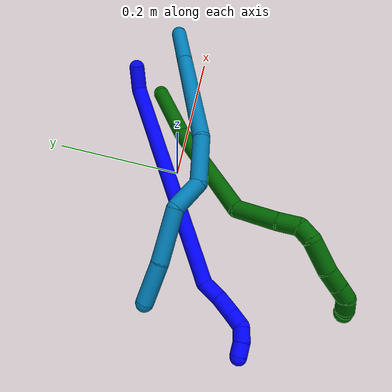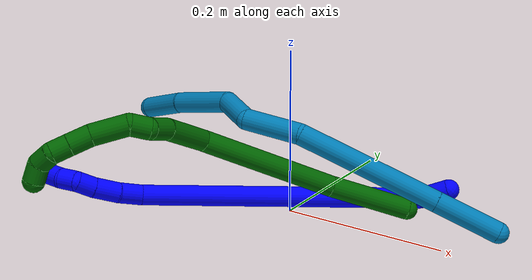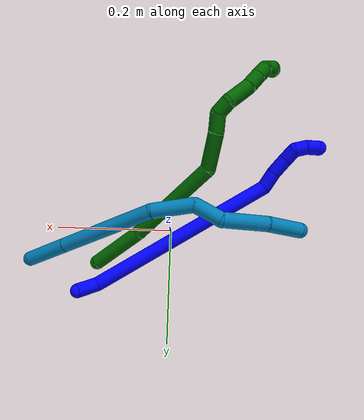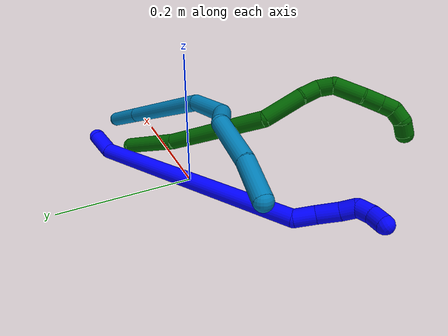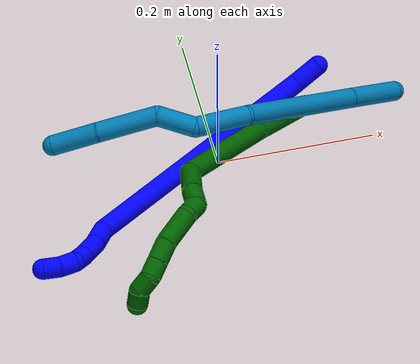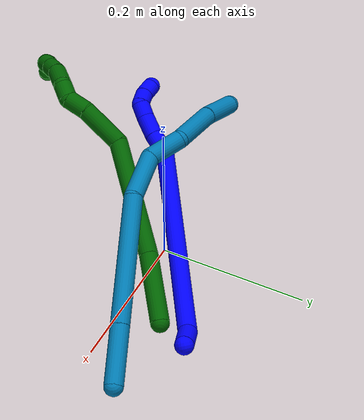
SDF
<sdf version="1.7">
 <world name="default">
  <model name="1">
   <static>0</static>
   <link name="1">
    <collision name="collision-cylinder-e_1_1_4">
     <pose>-0.016079 -0.007122 0.005715 0.894562 -1.05431 -0.544606</pose>
     <geometry><cylinder><radius>0.0125</radius><length>0.036982</length></cylinder></geometry>
     <surface>
      <friction><ode><mu>1.16</mu><mu2>1.16</mu2><slip1>0</slip1><slip2>0</slip2></ode></friction>
      <contact><ode><kp>1e+06</kp><kd>1</kd><max_vel>0</max_vel><min_depth>0.001</min_depth></ode></contact>
     </surface>
    </collision>
    <visual name="visual-cylinder-e_1_1_4">
     <pose>-0.016079 -0.007122 0.005715 0.894562 -1.05431 -0.544606</pose>
     <geometry><cylinder><radius>0.0125</radius><length>0.036982</length></cylinder></geometry>
     <material><ambient>0 0 1 1</ambient></material>
    </visual>
    <collision name="collision-cylinder-e_2_4_5">
     <pose>-0.137773 -0.077545 0.127361 0.499788 -0.674486 -0.17851</pose>
     <geometry><cylinder><radius>0.0125</radius><length>0.338241</length></cylinder></geometry>
     <surface>
      <friction><ode><mu>1.16</mu><mu2>1.16</mu2><slip1>0</slip1><slip2>0</slip2></ode></friction>
      <contact><ode><kp>1e+06</kp><kd>1</kd><max_vel>0</max_vel><min_depth>0.001</min_depth></ode></contact>
     </surface>
    </collision>
    <visual name="visual-cylinder-e_2_4_5">
     <pose>-0.137773 -0.077545 0.127361 0.499788 -0.674486 -0.17851</pose>
     <geometry><cylinder><radius>0.0125</radius><length>0.338241</length></cylinder></geometry>
     <material><ambient>0 0 1 1</ambient></material>
    </visual>
    <collision name="collision-cylinder-e_3_5_6">
     <pose>-0.245435 -0.1488 0.256181 0.552863 -0.134301 -0.038153</pose>
     <geometry><cylinder><radius>0.0125</radius><length>0.030565</length></cylinder></geometry>
     <surface>
      <friction><ode><mu>1.16</mu><mu2>1.16</mu2><slip1>0</slip1><slip2>0</slip2></ode></friction>
      <contact><ode><kp>1e+06</kp><kd>1</kd><max_vel>0</max_vel><min_depth>0.001</min_depth></ode></contact>
     </surface>
    </collision>
    <visual name="visual-cylinder-e_3_5_6">
     <pose>-0.245435 -0.1488 0.256181 0.552863 -0.134301 -0.038153</pose>
     <geometry><cylinder><radius>0.0125</radius><length>0.030565</length></cylinder></geometry>
     <material><ambient>0 0 1 1</ambient></material>
    </visual>
    <collision name="collision-cylinder-e_4_6_7">
     <pose>-0.250662 -0.16298 0.283043 0.419224 -0.20505 -0.043768</pose>
     <geometry><cylinder><radius>0.0125</radius><length>0.03125</length></cylinder></geometry>
     <surface>
      <friction><ode><mu>1.16</mu><mu2>1.16</mu2><slip1>0</slip1><slip2>0</slip2></ode></friction>
      <contact><ode><kp>1e+06</kp><kd>1</kd><max_vel>0</max_vel><min_depth>0.001</min_depth></ode></contact>
     </surface>
    </collision>
    <visual name="visual-cylinder-e_4_6_7">
     <pose>-0.250662 -0.16298 0.283043 0.419224 -0.20505 -0.043768</pose>
     <geometry><cylinder><radius>0.0125</radius><length>0.03125</length></cylinder></geometry>
     <material><ambient>0 0 1 1</ambient></material>
    </visual>
    <collision name="collision-cylinder-e_5_7_8">
     <pose>-0.25556 -0.172384 0.307364 0.297867 -0.157258 -0.023643</pose>
     <geometry><cylinder><radius>0.0125</radius><length>0.02192</length></cylinder></geometry>
     <surface>
      <friction><ode><mu>1.16</mu><mu2>1.16</mu2><slip1>0</slip1><slip2>0</slip2></ode></friction>
      <contact><ode><kp>1e+06</kp><kd>1</kd><max_vel>0</max_vel><min_depth>0.001</min_depth></ode></contact>
     </surface>
    </collision>
    <visual name="visual-cylinder-e_5_7_8">
     <pose>-0.25556 -0.172384 0.307364 0.297867 -0.157258 -0.023643</pose>
     <geometry><cylinder><radius>0.0125</radius><length>0.02192</length></cylinder></geometry>
     <material><ambient>0 0 1 1</ambient></material>
    </visual>
    <collision name="collision-cylinder-e_6_8_9">
     <pose>-0.265128 -0.176367 0.324406 0.119825 -0.861264 -0.055098</pose>
     <geometry><cylinder><radius>0.0125</radius><length>0.020698</length></cylinder></geometry>
     <surface>
      <friction><ode><mu>1.16</mu><mu2>1.16</mu2><slip1>0</slip1><slip2>0</slip2></ode></friction>
      <contact><ode><kp>1e+06</kp><kd>1</kd><max_vel>0</max_vel><min_depth>0.001</min_depth></ode></contact>
     </surface>
    </collision>
    <visual name="visual-cylinder-e_6_8_9">
     <pose>-0.265128 -0.176367 0.324406 0.119825 -0.861264 -0.055098</pose>
     <geometry><cylinder><radius>0.0125</radius><length>0.020698</length></cylinder></geometry>
     <material><ambient>0 0 1 1</ambient></material>
    </visual>
    <collision name="collision-cylinder-e_7_9_2">
     <pose>-0.281598 -0.175687 0.336295 -0.278605 -1.0108 0.154857</pose>
     <geometry><cylinder><radius>0.0125</radius><length>0.020344</length></cylinder></geometry>
     <surface>
      <friction><ode><mu>1.16</mu><mu2>1.16</mu2><slip1>0</slip1><slip2>0</slip2></ode></friction>
      <contact><ode><kp>1e+06</kp><kd>1</kd><max_vel>0</max_vel><min_depth>0.001</min_depth></ode></contact>
     </surface>
    </collision>
    <visual name="visual-cylinder-e_7_9_2">
     <pose>-0.281598 -0.175687 0.336295 -0.278605 -1.0108 0.154857</pose>
     <geometry><cylinder><radius>0.0125</radius><length>0.020344</length></cylinder></geometry>
     <material><ambient>0 0 1 1</ambient></material>
    </visual>
    <collision name="collision-sphere-2">
     <pose>-0.290216 -0.174201 0.341489 0 -0 0</pose>
     <geometry><sphere><radius>0.0125</radius></sphere></geometry>
     <surface>
      <friction><ode><mu>1.16</mu><mu2>1.16</mu2><slip1>0</slip1><slip2>0</slip2></ode></friction>
      <contact><ode><kp>1e+06</kp><kd>1</kd><max_vel>0</max_vel><min_depth>0.001</min_depth></ode></contact>
     </surface>
    </collision>
    <visual name="visual-sphere-2">
     <pose>-0.290216 -0.174201 0.341489 0 -0 0</pose>
     <geometry><sphere><radius>0.0125</radius></sphere></geometry>
     <material><ambient>0 0 1 1</ambient></material>
    </visual>
    <collision name="collision-sphere-9">
     <pose>-0.27298 -0.177173 0.3311 0 -0 0</pose>
     <geometry><sphere><radius>0.0125</radius></sphere></geometry>
     <surface>
      <friction><ode><mu>1.16</mu><mu2>1.16</mu2><slip1>0</slip1><slip2>0</slip2></ode></friction>
      <contact><ode><kp>1e+06</kp><kd>1</kd><max_vel>0</max_vel><min_depth>0.001</min_depth></ode></contact>
     </surface>
    </collision>
    <visual name="visual-sphere-9">
     <pose>-0.27298 -0.177173 0.3311 0 -0 0</pose>
     <geometry><sphere><radius>0.0125</radius></sphere></geometry>
     <material><ambient>0 0 1 1</ambient></material>
    </visual>
    <collision name="collision-sphere-4">
     <pose>-0.032158 -0.014244 0.01143 0 -0 0</pose>
     <geometry><sphere><radius>0.0125</radius></sphere></geometry>
     <surface>
      <friction><ode><mu>1.16</mu><mu2>1.16</mu2><slip1>0</slip1><slip2>0</slip2></ode></friction>
      <contact><ode><kp>1e+06</kp><kd>1</kd><max_vel>0</max_vel><min_depth>0.001</min_depth></ode></contact>
     </surface>
    </collision>
    <visual name="visual-sphere-4">
     <pose>-0.032158 -0.014244 0.01143 0 -0 0</pose>
     <geometry><sphere><radius>0.0125</radius></sphere></geometry>
     <material><ambient>0 0 1 1</ambient></material>
    </visual>
    <collision name="collision-sphere-1">
     <geometry><sphere><radius>0.0125</radius></sphere></geometry>
     <surface>
      <friction><ode><mu>1.16</mu><mu2>1.16</mu2><slip1>0</slip1><slip2>0</slip2></ode></friction>
      <contact><ode><kp>1e+06</kp><kd>1</kd><max_vel>0</max_vel><min_depth>0.001</min_depth></ode></contact>
     </surface>
    </collision>
    <visual name="visual-sphere-1">
     <geometry><sphere><radius>0.0125</radius></sphere></geometry>
     <material><ambient>0 0 1 1</ambient></material>
    </visual>
    <collision name="collision-sphere-8">
     <pose>-0.257277 -0.175561 0.317712 0 -0 0</pose>
     <geometry><sphere><radius>0.0125</radius></sphere></geometry>
     <surface>
      <friction><ode><mu>1.16</mu><mu2>1.16</mu2><slip1>0</slip1><slip2>0</slip2></ode></friction>
      <contact><ode><kp>1e+06</kp><kd>1</kd><max_vel>0</max_vel><min_depth>0.001</min_depth></ode></contact>
     </surface>
    </collision>
    <visual name="visual-sphere-8">
     <pose>-0.257277 -0.175561 0.317712 0 -0 0</pose>
     <geometry><sphere><radius>0.0125</radius></sphere></geometry>
     <material><ambient>0 0 1 1</ambient></material>
    </visual>
    <collision name="collision-sphere-5">
     <pose>-0.243388 -0.140847 0.243293 0 -0 0</pose>
     <geometry><sphere><radius>0.0125</radius></sphere></geometry>
     <surface>
      <friction><ode><mu>1.16</mu><mu2>1.16</mu2><slip1>0</slip1><slip2>0</slip2></ode></friction>
      <contact><ode><kp>1e+06</kp><kd>1</kd><max_vel>0</max_vel><min_depth>0.001</min_depth></ode></contact>
     </surface>
    </collision>
    <visual name="visual-sphere-5">
     <pose>-0.243388 -0.140847 0.243293 0 -0 0</pose>
     <geometry><sphere><radius>0.0125</radius></sphere></geometry>
     <material><ambient>0 0 1 1</ambient></material>
    </visual>
    <collision name="collision-sphere-6">
     <pose>-0.247481 -0.156753 0.26907 0 -0 0</pose>
     <geometry><sphere><radius>0.0125</radius></sphere></geometry>
     <surface>
      <friction><ode><mu>1.16</mu><mu2>1.16</mu2><slip1>0</slip1><slip2>0</slip2></ode></friction>
      <contact><ode><kp>1e+06</kp><kd>1</kd><max_vel>0</max_vel><min_depth>0.001</min_depth></ode></contact>
     </surface>
    </collision>
    <visual name="visual-sphere-6">
     <pose>-0.247481 -0.156753 0.26907 0 -0 0</pose>
     <geometry><sphere><radius>0.0125</radius></sphere></geometry>
     <material><ambient>0 0 1 1</ambient></material>
    </visual>
    <collision name="collision-sphere-7">
     <pose>-0.253844 -0.169207 0.297016 0 -0 0</pose>
     <geometry><sphere><radius>0.0125</radius></sphere></geometry>
     <surface>
      <friction><ode><mu>1.16</mu><mu2>1.16</mu2><slip1>0</slip1><slip2>0</slip2></ode></friction>
      <contact><ode><kp>1e+06</kp><kd>1</kd><max_vel>0</max_vel><min_depth>0.001</min_depth></ode></contact>
     </surface>
    </collision>
    <visual name="visual-sphere-7">
     <pose>-0.253844 -0.169207 0.297016 0 -0 0</pose>
     <geometry><sphere><radius>0.0125</radius></sphere></geometry>
     <material><ambient>0 0 1 1</ambient></material>
    </visual>
    <inertial>
     <pose>-0.158697 -0.094274 0.160518 0 -0 0</pose>
     <mass>0.5</mass>
     <inertia>
      <ixx>0.002028</ixx>
      <ixy>0</ixy>
      <ixz>0</ixz>
      <iyy>0.002521</iyy>
      <iyz>0</iyz>
      <izz>0.003276</izz>
     </inertia>
    </inertial>
   </link>
   <pose>0.156792 0.108735 0.02594 0.625298 -0.494492 -0.223409</pose>
  </model>
  <model name="6">
   <static>0</static>
   <link name="6">
    <collision name="collision-cylinder-e_1_1_4">
     <pose>-0.012853 -0.014627 0.043687 0.323076 -0.272062 -0.044603</pose>
     <geometry><cylinder><radius>0.0125</radius><length>0.095659</length></cylinder></geometry>
     <surface>
      <friction><ode><mu>1.16</mu><mu2>1.16</mu2><slip1>0</slip1><slip2>0</slip2></ode></friction>
      <contact><ode><kp>1e+06</kp><kd>1</kd><max_vel>0</max_vel><min_depth>0.001</min_depth></ode></contact>
     </surface>
    </collision>
    <visual name="visual-cylinder-e_1_1_4">
     <pose>-0.012853 -0.014627 0.043687 0.323076 -0.272062 -0.044603</pose>
     <geometry><cylinder><radius>0.0125</radius><length>0.095659</length></cylinder></geometry>
     <material><ambient>0 0.392157 0.003922 1</ambient></material>
    </visual>
    <collision name="collision-cylinder-e_2_4_5">
     <pose>-0.057287 -0.057235 0.157457 0.379872 -0.396353 -0.077175</pose>
     <geometry><cylinder><radius>0.0125</radius><length>0.163609</length></cylinder></geometry>
     <surface>
      <friction><ode><mu>1.16</mu><mu2>1.16</mu2><slip1>0</slip1><slip2>0</slip2></ode></friction>
      <contact><ode><kp>1e+06</kp><kd>1</kd><max_vel>0</max_vel><min_depth>0.001</min_depth></ode></contact>
     </surface>
    </collision>
    <visual name="visual-cylinder-e_2_4_5">
     <pose>-0.057287 -0.057235 0.157457 0.379872 -0.396353 -0.077175</pose>
     <geometry><cylinder><radius>0.0125</radius><length>0.163609</length></cylinder></geometry>
     <material><ambient>0 0.392157 0.003922 1</ambient></material>
    </visual>
    <collision name="collision-cylinder-e_3_5_6">
     <pose>-0.114132 -0.091275 0.243137 0.370506 -0.98582 -0.200643</pose>
     <geometry><cylinder><radius>0.0125</radius><length>0.060607</length></cylinder></geometry>
     <surface>
      <friction><ode><mu>1.16</mu><mu2>1.16</mu2><slip1>0</slip1><slip2>0</slip2></ode></friction>
      <contact><ode><kp>1e+06</kp><kd>1</kd><max_vel>0</max_vel><min_depth>0.001</min_depth></ode></contact>
     </surface>
    </collision>
    <visual name="visual-cylinder-e_3_5_6">
     <pose>-0.114132 -0.091275 0.243137 0.370506 -0.98582 -0.200643</pose>
     <geometry><cylinder><radius>0.0125</radius><length>0.060607</length></cylinder></geometry>
     <material><ambient>0 0.392157 0.003922 1</ambient></material>
    </visual>
    <collision name="collision-cylinder-e_4_6_7">
     <pose>-0.152051 -0.097261 0.265567 -0.010701 -1.07571 0.006384</pose>
     <geometry><cylinder><radius>0.0125</radius><length>0.028761</length></cylinder></geometry>
     <surface>
      <friction><ode><mu>1.16</mu><mu2>1.16</mu2><slip1>0</slip1><slip2>0</slip2></ode></friction>
      <contact><ode><kp>1e+06</kp><kd>1</kd><max_vel>0</max_vel><min_depth>0.001</min_depth></ode></contact>
     </surface>
    </collision>
    <visual name="visual-cylinder-e_4_6_7">
     <pose>-0.152051 -0.097261 0.265567 -0.010701 -1.07571 0.006384</pose>
     <geometry><cylinder><radius>0.0125</radius><length>0.028761</length></cylinder></geometry>
     <material><ambient>0 0.392157 0.003922 1</ambient></material>
    </visual>
    <collision name="collision-cylinder-e_5_7_8">
     <pose>-0.169682 -0.099617 0.282388 0.238555 -0.450812 -0.054948</pose>
     <geometry><cylinder><radius>0.0125</radius><length>0.022844</length></cylinder></geometry>
     <surface>
      <friction><ode><mu>1.16</mu><mu2>1.16</mu2><slip1>0</slip1><slip2>0</slip2></ode></friction>
      <contact><ode><kp>1e+06</kp><kd>1</kd><max_vel>0</max_vel><min_depth>0.001</min_depth></ode></contact>
     </surface>
    </collision>
    <visual name="visual-cylinder-e_5_7_8">
     <pose>-0.169682 -0.099617 0.282388 0.238555 -0.450812 -0.054948</pose>
     <geometry><cylinder><radius>0.0125</radius><length>0.022844</length></cylinder></geometry>
     <material><ambient>0 0.392157 0.003922 1</ambient></material>
    </visual>
    <collision name="collision-cylinder-e_6_8_9">
     <pose>-0.177591 -0.096815 0.312637 -0.252735 -0.139235 0.017717</pose>
     <geometry><cylinder><radius>0.0125</radius><length>0.042256</length></cylinder></geometry>
     <surface>
      <friction><ode><mu>1.16</mu><mu2>1.16</mu2><slip1>0</slip1><slip2>0</slip2></ode></friction>
      <contact><ode><kp>1e+06</kp><kd>1</kd><max_vel>0</max_vel><min_depth>0.001</min_depth></ode></contact>
     </surface>
    </collision>
    <visual name="visual-cylinder-e_6_8_9">
     <pose>-0.177591 -0.096815 0.312637 -0.252735 -0.139235 0.017717</pose>
     <geometry><cylinder><radius>0.0125</radius><length>0.042256</length></cylinder></geometry>
     <material><ambient>0 0.392157 0.003922 1</ambient></material>
    </visual>
    <collision name="collision-cylinder-e_7_9_10">
     <pose>-0.183753 -0.086507 0.344156 -0.423496 -0.255764 0.055269</pose>
     <geometry><cylinder><radius>0.0125</radius><length>0.025533</length></cylinder></geometry>
     <surface>
      <friction><ode><mu>1.16</mu><mu2>1.16</mu2><slip1>0</slip1><slip2>0</slip2></ode></friction>
      <contact><ode><kp>1e+06</kp><kd>1</kd><max_vel>0</max_vel><min_depth>0.001</min_depth></ode></contact>
     </surface>
    </collision>
    <visual name="visual-cylinder-e_7_9_10">
     <pose>-0.183753 -0.086507 0.344156 -0.423496 -0.255764 0.055269</pose>
     <geometry><cylinder><radius>0.0125</radius><length>0.025533</length></cylinder></geometry>
     <material><ambient>0 0.392157 0.003922 1</ambient></material>
    </visual>
    <collision name="collision-cylinder-e_8_10_11">
     <pose>-0.189386 -0.077292 0.364326 -0.434906 -0.239914 0.053251</pose>
     <geometry><cylinder><radius>0.0125</radius><length>0.020228</length></cylinder></geometry>
     <surface>
      <friction><ode><mu>1.16</mu><mu2>1.16</mu2><slip1>0</slip1><slip2>0</slip2></ode></friction>
      <contact><ode><kp>1e+06</kp><kd>1</kd><max_vel>0</max_vel><min_depth>0.001</min_depth></ode></contact>
     </surface>
    </collision>
    <visual name="visual-cylinder-e_8_10_11">
     <pose>-0.189386 -0.077292 0.364326 -0.434906 -0.239914 0.053251</pose>
     <geometry><cylinder><radius>0.0125</radius><length>0.020228</length></cylinder></geometry>
     <material><ambient>0 0.392157 0.003922 1</ambient></material>
    </visual>
    <collision name="collision-cylinder-e_9_11_12">
     <pose>-0.188685 -0.067686 0.381108 -0.60696 0.31319 -0.098806</pose>
     <geometry><cylinder><radius>0.0125</radius><length>0.020147</length></cylinder></geometry>
     <surface>
      <friction><ode><mu>1.16</mu><mu2>1.16</mu2><slip1>0</slip1><slip2>0</slip2></ode></friction>
      <contact><ode><kp>1e+06</kp><kd>1</kd><max_vel>0</max_vel><min_depth>0.001</min_depth></ode></contact>
     </surface>
    </collision>
    <visual name="visual-cylinder-e_9_11_12">
     <pose>-0.188685 -0.067686 0.381108 -0.60696 0.31319 -0.098806</pose>
     <geometry><cylinder><radius>0.0125</radius><length>0.020147</length></cylinder></geometry>
     <material><ambient>0 0.392157 0.003922 1</ambient></material>
    </visual>
    <collision name="collision-cylinder-e_10_12_2">
     <pose>-0.183376 -0.053031 0.392758 -1.1807 0.218479 -0.146716</pose>
     <geometry><cylinder><radius>0.0125</radius><length>0.020355</length></cylinder></geometry>
     <surface>
      <friction><ode><mu>1.16</mu><mu2>1.16</mu2><slip1>0</slip1><slip2>0</slip2></ode></friction>
      <contact><ode><kp>1e+06</kp><kd>1</kd><max_vel>0</max_vel><min_depth>0.001</min_depth></ode></contact>
     </surface>
    </collision>
    <visual name="visual-cylinder-e_10_12_2">
     <pose>-0.183376 -0.053031 0.392758 -1.1807 0.218479 -0.146716</pose>
     <geometry><cylinder><radius>0.0125</radius><length>0.020355</length></cylinder></geometry>
     <material><ambient>0 0.392157 0.003922 1</ambient></material>
    </visual>
    <collision name="collision-sphere-2">
     <pose>-0.18117 -0.043842 0.396536 0 -0 0</pose>
     <geometry><sphere><radius>0.0125</radius></sphere></geometry>
     <surface>
      <friction><ode><mu>1.16</mu><mu2>1.16</mu2><slip1>0</slip1><slip2>0</slip2></ode></friction>
      <contact><ode><kp>1e+06</kp><kd>1</kd><max_vel>0</max_vel><min_depth>0.001</min_depth></ode></contact>
     </surface>
    </collision>
    <visual name="visual-sphere-2">
     <pose>-0.18117 -0.043842 0.396536 0 -0 0</pose>
     <geometry><sphere><radius>0.0125</radius></sphere></geometry>
     <material><ambient>0 0.392157 0.003922 1</ambient></material>
    </visual>
    <collision name="collision-sphere-12">
     <pose>-0.185582 -0.06222 0.38898 0 -0 0</pose>
     <geometry><sphere><radius>0.0125</radius></sphere></geometry>
     <surface>
      <friction><ode><mu>1.16</mu><mu2>1.16</mu2><slip1>0</slip1><slip2>0</slip2></ode></friction>
      <contact><ode><kp>1e+06</kp><kd>1</kd><max_vel>0</max_vel><min_depth>0.001</min_depth></ode></contact>
     </surface>
    </collision>
    <visual name="visual-sphere-12">
     <pose>-0.185582 -0.06222 0.38898 0 -0 0</pose>
     <geometry><sphere><radius>0.0125</radius></sphere></geometry>
     <material><ambient>0 0.392157 0.003922 1</ambient></material>
    </visual>
    <collision name="collision-sphere-11">
     <pose>-0.191789 -0.073153 0.373236 0 -0 0</pose>
     <geometry><sphere><radius>0.0125</radius></sphere></geometry>
     <surface>
      <friction><ode><mu>1.16</mu><mu2>1.16</mu2><slip1>0</slip1><slip2>0</slip2></ode></friction>
      <contact><ode><kp>1e+06</kp><kd>1</kd><max_vel>0</max_vel><min_depth>0.001</min_depth></ode></contact>
     </surface>
    </collision>
    <visual name="visual-sphere-11">
     <pose>-0.191789 -0.073153 0.373236 0 -0 0</pose>
     <geometry><sphere><radius>0.0125</radius></sphere></geometry>
     <material><ambient>0 0.392157 0.003922 1</ambient></material>
    </visual>
    <collision name="collision-sphere-10">
     <pose>-0.186982 -0.081431 0.355416 0 -0 0</pose>
     <geometry><sphere><radius>0.0125</radius></sphere></geometry>
     <surface>
      <friction><ode><mu>1.16</mu><mu2>1.16</mu2><slip1>0</slip1><slip2>0</slip2></ode></friction>
      <contact><ode><kp>1e+06</kp><kd>1</kd><max_vel>0</max_vel><min_depth>0.001</min_depth></ode></contact>
     </surface>
    </collision>
    <visual name="visual-sphere-10">
     <pose>-0.186982 -0.081431 0.355416 0 -0 0</pose>
     <geometry><sphere><radius>0.0125</radius></sphere></geometry>
     <material><ambient>0 0.392157 0.003922 1</ambient></material>
    </visual>
    <collision name="collision-sphere-9">
     <pose>-0.180523 -0.091583 0.332896 0 -0 0</pose>
     <geometry><sphere><radius>0.0125</radius></sphere></geometry>
     <surface>
      <friction><ode><mu>1.16</mu><mu2>1.16</mu2><slip1>0</slip1><slip2>0</slip2></ode></friction>
      <contact><ode><kp>1e+06</kp><kd>1</kd><max_vel>0</max_vel><min_depth>0.001</min_depth></ode></contact>
     </surface>
    </collision>
    <visual name="visual-sphere-9">
     <pose>-0.180523 -0.091583 0.332896 0 -0 0</pose>
     <geometry><sphere><radius>0.0125</radius></sphere></geometry>
     <material><ambient>0 0.392157 0.003922 1</ambient></material>
    </visual>
    <collision name="collision-sphere-4">
     <pose>-0.025705 -0.029253 0.087374 0 -0 0</pose>
     <geometry><sphere><radius>0.0125</radius></sphere></geometry>
     <surface>
      <friction><ode><mu>1.16</mu><mu2>1.16</mu2><slip1>0</slip1><slip2>0</slip2></ode></friction>
      <contact><ode><kp>1e+06</kp><kd>1</kd><max_vel>0</max_vel><min_depth>0.001</min_depth></ode></contact>
     </surface>
    </collision>
    <visual name="visual-sphere-4">
     <pose>-0.025705 -0.029253 0.087374 0 -0 0</pose>
     <geometry><sphere><radius>0.0125</radius></sphere></geometry>
     <material><ambient>0 0.392157 0.003922 1</ambient></material>
    </visual>
    <collision name="collision-sphere-1">
     <geometry><sphere><radius>0.0125</radius></sphere></geometry>
     <surface>
      <friction><ode><mu>1.16</mu><mu2>1.16</mu2><slip1>0</slip1><slip2>0</slip2></ode></friction>
      <contact><ode><kp>1e+06</kp><kd>1</kd><max_vel>0</max_vel><min_depth>0.001</min_depth></ode></contact>
     </surface>
    </collision>
    <visual name="visual-sphere-1">
     <geometry><sphere><radius>0.0125</radius></sphere></geometry>
     <material><ambient>0 0.392157 0.003922 1</ambient></material>
    </visual>
    <collision name="collision-sphere-8">
     <pose>-0.174658 -0.102047 0.292378 0 -0 0</pose>
     <geometry><sphere><radius>0.0125</radius></sphere></geometry>
     <surface>
      <friction><ode><mu>1.16</mu><mu2>1.16</mu2><slip1>0</slip1><slip2>0</slip2></ode></friction>
      <contact><ode><kp>1e+06</kp><kd>1</kd><max_vel>0</max_vel><min_depth>0.001</min_depth></ode></contact>
     </surface>
    </collision>
    <visual name="visual-sphere-8">
     <pose>-0.174658 -0.102047 0.292378 0 -0 0</pose>
     <geometry><sphere><radius>0.0125</radius></sphere></geometry>
     <material><ambient>0 0.392157 0.003922 1</ambient></material>
    </visual>
    <collision name="collision-sphere-5">
     <pose>-0.088868 -0.085217 0.22754 0 -0 0</pose>
     <geometry><sphere><radius>0.0125</radius></sphere></geometry>
     <surface>
      <friction><ode><mu>1.16</mu><mu2>1.16</mu2><slip1>0</slip1><slip2>0</slip2></ode></friction>
      <contact><ode><kp>1e+06</kp><kd>1</kd><max_vel>0</max_vel><min_depth>0.001</min_depth></ode></contact>
     </surface>
    </collision>
    <visual name="visual-sphere-5">
     <pose>-0.088868 -0.085217 0.22754 0 -0 0</pose>
     <geometry><sphere><radius>0.0125</radius></sphere></geometry>
     <material><ambient>0 0.392157 0.003922 1</ambient></material>
    </visual>
    <collision name="collision-sphere-6">
     <pose>-0.139397 -0.097334 0.258735 0 -0 0</pose>
     <geometry><sphere><radius>0.0125</radius></sphere></geometry>
     <surface>
      <friction><ode><mu>1.16</mu><mu2>1.16</mu2><slip1>0</slip1><slip2>0</slip2></ode></friction>
      <contact><ode><kp>1e+06</kp><kd>1</kd><max_vel>0</max_vel><min_depth>0.001</min_depth></ode></contact>
     </surface>
    </collision>
    <visual name="visual-sphere-6">
     <pose>-0.139397 -0.097334 0.258735 0 -0 0</pose>
     <geometry><sphere><radius>0.0125</radius></sphere></geometry>
     <material><ambient>0 0.392157 0.003922 1</ambient></material>
    </visual>
    <collision name="collision-sphere-7">
     <pose>-0.164705 -0.097188 0.272399 0 -0 0</pose>
     <geometry><sphere><radius>0.0125</radius></sphere></geometry>
     <surface>
      <friction><ode><mu>1.16</mu><mu2>1.16</mu2><slip1>0</slip1><slip2>0</slip2></ode></friction>
      <contact><ode><kp>1e+06</kp><kd>1</kd><max_vel>0</max_vel><min_depth>0.001</min_depth></ode></contact>
     </surface>
    </collision>
    <visual name="visual-sphere-7">
     <pose>-0.164705 -0.097188 0.272399 0 -0 0</pose>
     <geometry><sphere><radius>0.0125</radius></sphere></geometry>
     <material><ambient>0 0.392157 0.003922 1</ambient></material>
    </visual>
    <inertial>
     <pose>-0.09866 -0.063349 0.207612 0 -0 0</pose>
     <mass>0.5</mass>
     <inertia>
      <ixx>0.000398</ixx>
      <ixy>0</ixy>
      <ixz>0</ixz>
      <iyy>0.000424</iyy>
      <iyz>0</iyz>
      <izz>0.000367</izz>
     </inertia>
    </inertial>
   </link>
   <pose>0.126583 0.059256 0.011444 -1.64032 0.374635 2.03513</pose>
  </model>
  <model name="9">
   <static>0</static>
   <link name="9">
    <collision name="collision-cylinder-e_1_1_4">
     <pose>-0.033118 -0.017374 0.010359 1.03316 -1.0225 -0.616978</pose>
     <geometry><cylinder><radius>0.0125</radius><length>0.077614</length></cylinder></geometry>
     <surface>
      <friction><ode><mu>1.16</mu><mu2>1.16</mu2><slip1>0</slip1><slip2>0</slip2></ode></friction>
      <contact><ode><kp>1e+06</kp><kd>1</kd><max_vel>0</max_vel><min_depth>0.001</min_depth></ode></contact>
     </surface>
    </collision>
    <visual name="visual-cylinder-e_1_1_4">
     <pose>-0.033118 -0.017374 0.010359 1.03316 -1.0225 -0.616978</pose>
     <geometry><cylinder><radius>0.0125</radius><length>0.077614</length></cylinder></geometry>
     <material><ambient>0 0.490196 0.709804 1</ambient></material>
    </visual>
    <collision name="collision-cylinder-e_2_4_5">
     <pose>-0.139912 -0.073527 0.043313 1.04322 -1.02365 -0.624561</pose>
     <geometry><cylinder><radius>0.0125</radius><length>0.17254</length></cylinder></geometry>
     <surface>
      <friction><ode><mu>1.16</mu><mu2>1.16</mu2><slip1>0</slip1><slip2>0</slip2></ode></friction>
      <contact><ode><kp>1e+06</kp><kd>1</kd><max_vel>0</max_vel><min_depth>0.001</min_depth></ode></contact>
     </surface>
    </collision>
    <visual name="visual-cylinder-e_2_4_5">
     <pose>-0.139912 -0.073527 0.043313 1.04322 -1.02365 -0.624561</pose>
     <geometry><cylinder><radius>0.0125</radius><length>0.17254</length></cylinder></geometry>
     <material><ambient>0 0.490196 0.709804 1</ambient></material>
    </visual>
    <collision name="collision-cylinder-e_3_5_6">
     <pose>-0.246369 -0.122557 0.064385 1.71833 -1.26462 -1.4085</pose>
     <geometry><cylinder><radius>0.0125</radius><length>0.068761</length></cylinder></geometry>
     <surface>
      <friction><ode><mu>1.16</mu><mu2>1.16</mu2><slip1>0</slip1><slip2>0</slip2></ode></friction>
      <contact><ode><kp>1e+06</kp><kd>1</kd><max_vel>0</max_vel><min_depth>0.001</min_depth></ode></contact>
     </surface>
    </collision>
    <visual name="visual-cylinder-e_3_5_6">
     <pose>-0.246369 -0.122557 0.064385 1.71833 -1.26462 -1.4085</pose>
     <geometry><cylinder><radius>0.0125</radius><length>0.068761</length></cylinder></geometry>
     <material><ambient>0 0.490196 0.709804 1</ambient></material>
    </visual>
    <collision name="collision-cylinder-e_4_6_7">
     <pose>-0.301724 -0.124735 0.062568 -1.60715 -1.22715 1.26159</pose>
     <geometry><cylinder><radius>0.0125</radius><length>0.04795</length></cylinder></geometry>
     <surface>
      <friction><ode><mu>1.16</mu><mu2>1.16</mu2><slip1>0</slip1><slip2>0</slip2></ode></friction>
      <contact><ode><kp>1e+06</kp><kd>1</kd><max_vel>0</max_vel><min_depth>0.001</min_depth></ode></contact>
     </surface>
    </collision>
    <visual name="visual-cylinder-e_4_6_7">
     <pose>-0.301724 -0.124735 0.062568 -1.60715 -1.22715 1.26159</pose>
     <geometry><cylinder><radius>0.0125</radius><length>0.04795</length></cylinder></geometry>
     <material><ambient>0 0.490196 0.709804 1</ambient></material>
    </visual>
    <collision name="collision-cylinder-e_5_7_8">
     <pose>-0.359043 -0.120186 0.048479 2.89156 -1.18189 -2.77127</pose>
     <geometry><cylinder><radius>0.0125</radius><length>0.0751</length></cylinder></geometry>
     <surface>
      <friction><ode><mu>1.16</mu><mu2>1.16</mu2><slip1>0</slip1><slip2>0</slip2></ode></friction>
      <contact><ode><kp>1e+06</kp><kd>1</kd><max_vel>0</max_vel><min_depth>0.001</min_depth></ode></contact>
     </surface>
    </collision>
    <visual name="visual-cylinder-e_5_7_8">
     <pose>-0.359043 -0.120186 0.048479 2.89156 -1.18189 -2.77127</pose>
     <geometry><cylinder><radius>0.0125</radius><length>0.0751</length></cylinder></geometry>
     <material><ambient>0 0.490196 0.709804 1</ambient></material>
    </visual>
    <collision name="collision-cylinder-e_6_8_2">
     <pose>-0.419295 -0.12376 0.020846 3.13795 -1.07372 -3.13546</pose>
     <geometry><cylinder><radius>0.0125</radius><length>0.058036</length></cylinder></geometry>
     <surface>
      <friction><ode><mu>1.16</mu><mu2>1.16</mu2><slip1>0</slip1><slip2>0</slip2></ode></friction>
      <contact><ode><kp>1e+06</kp><kd>1</kd><max_vel>0</max_vel><min_depth>0.001</min_depth></ode></contact>
     </surface>
    </collision>
    <visual name="visual-cylinder-e_6_8_2">
     <pose>-0.419295 -0.12376 0.020846 3.13795 -1.07372 -3.13546</pose>
     <geometry><cylinder><radius>0.0125</radius><length>0.058036</length></cylinder></geometry>
     <material><ambient>0 0.490196 0.709804 1</ambient></material>
    </visual>
    <collision name="collision-sphere-2">
     <pose>-0.444801 -0.12381 0.007009 0 -0 0</pose>
     <geometry><sphere><radius>0.0125</radius></sphere></geometry>
     <surface>
      <friction><ode><mu>1.16</mu><mu2>1.16</mu2><slip1>0</slip1><slip2>0</slip2></ode></friction>
      <contact><ode><kp>1e+06</kp><kd>1</kd><max_vel>0</max_vel><min_depth>0.001</min_depth></ode></contact>
     </surface>
    </collision>
    <visual name="visual-sphere-2">
     <pose>-0.444801 -0.12381 0.007009 0 -0 0</pose>
     <geometry><sphere><radius>0.0125</radius></sphere></geometry>
     <material><ambient>0 0.490196 0.709804 1</ambient></material>
    </visual>
    <collision name="collision-sphere-4">
     <pose>-0.066236 -0.034748 0.020717 0 -0 0</pose>
     <geometry><sphere><radius>0.0125</radius></sphere></geometry>
     <surface>
      <friction><ode><mu>1.16</mu><mu2>1.16</mu2><slip1>0</slip1><slip2>0</slip2></ode></friction>
      <contact><ode><kp>1e+06</kp><kd>1</kd><max_vel>0</max_vel><min_depth>0.001</min_depth></ode></contact>
     </surface>
    </collision>
    <visual name="visual-sphere-4">
     <pose>-0.066236 -0.034748 0.020717 0 -0 0</pose>
     <geometry><sphere><radius>0.0125</radius></sphere></geometry>
     <material><ambient>0 0.490196 0.709804 1</ambient></material>
    </visual>
    <collision name="collision-sphere-1">
     <geometry><sphere><radius>0.0125</radius></sphere></geometry>
     <surface>
      <friction><ode><mu>1.16</mu><mu2>1.16</mu2><slip1>0</slip1><slip2>0</slip2></ode></friction>
      <contact><ode><kp>1e+06</kp><kd>1</kd><max_vel>0</max_vel><min_depth>0.001</min_depth></ode></contact>
     </surface>
    </collision>
    <visual name="visual-sphere-1">
     <geometry><sphere><radius>0.0125</radius></sphere></geometry>
     <material><ambient>0 0.490196 0.709804 1</ambient></material>
    </visual>
    <collision name="collision-sphere-8">
     <pose>-0.393788 -0.123709 0.034684 0 -0 0</pose>
     <geometry><sphere><radius>0.0125</radius></sphere></geometry>
     <surface>
      <friction><ode><mu>1.16</mu><mu2>1.16</mu2><slip1>0</slip1><slip2>0</slip2></ode></friction>
      <contact><ode><kp>1e+06</kp><kd>1</kd><max_vel>0</max_vel><min_depth>0.001</min_depth></ode></contact>
     </surface>
    </collision>
    <visual name="visual-sphere-8">
     <pose>-0.393788 -0.123709 0.034684 0 -0 0</pose>
     <geometry><sphere><radius>0.0125</radius></sphere></geometry>
     <material><ambient>0 0.490196 0.709804 1</ambient></material>
    </visual>
    <collision name="collision-sphere-5">
     <pose>-0.213588 -0.112307 0.065908 0 -0 0</pose>
     <geometry><sphere><radius>0.0125</radius></sphere></geometry>
     <surface>
      <friction><ode><mu>1.16</mu><mu2>1.16</mu2><slip1>0</slip1><slip2>0</slip2></ode></friction>
      <contact><ode><kp>1e+06</kp><kd>1</kd><max_vel>0</max_vel><min_depth>0.001</min_depth></ode></contact>
     </surface>
    </collision>
    <visual name="visual-sphere-5">
     <pose>-0.213588 -0.112307 0.065908 0 -0 0</pose>
     <geometry><sphere><radius>0.0125</radius></sphere></geometry>
     <material><ambient>0 0.490196 0.709804 1</ambient></material>
    </visual>
    <collision name="collision-sphere-6">
     <pose>-0.279151 -0.132808 0.062862 0 -0 0</pose>
     <geometry><sphere><radius>0.0125</radius></sphere></geometry>
     <surface>
      <friction><ode><mu>1.16</mu><mu2>1.16</mu2><slip1>0</slip1><slip2>0</slip2></ode></friction>
      <contact><ode><kp>1e+06</kp><kd>1</kd><max_vel>0</max_vel><min_depth>0.001</min_depth></ode></contact>
     </surface>
    </collision>
    <visual name="visual-sphere-6">
     <pose>-0.279151 -0.132808 0.062862 0 -0 0</pose>
     <geometry><sphere><radius>0.0125</radius></sphere></geometry>
     <material><ambient>0 0.490196 0.709804 1</ambient></material>
    </visual>
    <collision name="collision-sphere-7">
     <pose>-0.324297 -0.116663 0.062275 0 -0 0</pose>
     <geometry><sphere><radius>0.0125</radius></sphere></geometry>
     <surface>
      <friction><ode><mu>1.16</mu><mu2>1.16</mu2><slip1>0</slip1><slip2>0</slip2></ode></friction>
      <contact><ode><kp>1e+06</kp><kd>1</kd><max_vel>0</max_vel><min_depth>0.001</min_depth></ode></contact>
     </surface>
    </collision>
    <visual name="visual-sphere-7">
     <pose>-0.324297 -0.116663 0.062275 0 -0 0</pose>
     <geometry><sphere><radius>0.0125</radius></sphere></geometry>
     <material><ambient>0 0.490196 0.709804 1</ambient></material>
    </visual>
    <inertial>
     <pose>-0.218834 -0.089303 0.04111 0 -0 0</pose>
     <mass>0.5</mass>
     <inertia><ixx>-9e-06</ixx><ixy>0</ixy><ixz>0</ixz><iyy>0.000328</iyy><iyz>0</iyz><izz>0.000721</izz></inertia>
    </inertial>
   </link>
   <pose>0.243639 0.056494 0.0115 0.006375 0.174145 -0.139308</pose>
  </model>
 </world>
</sdf>
